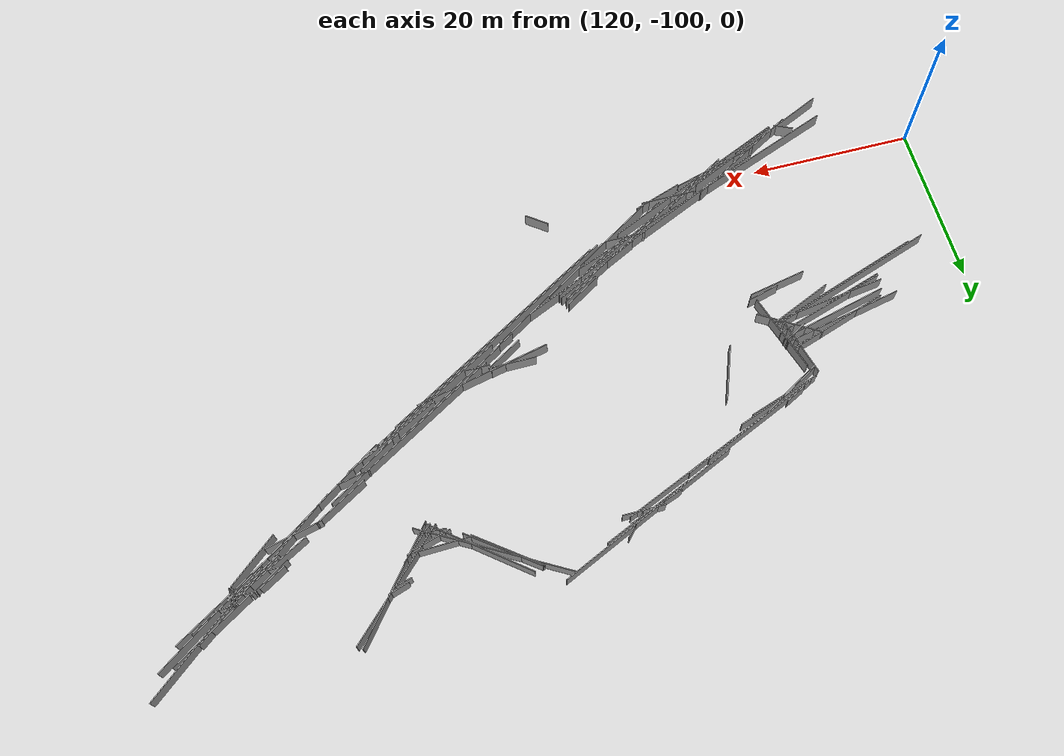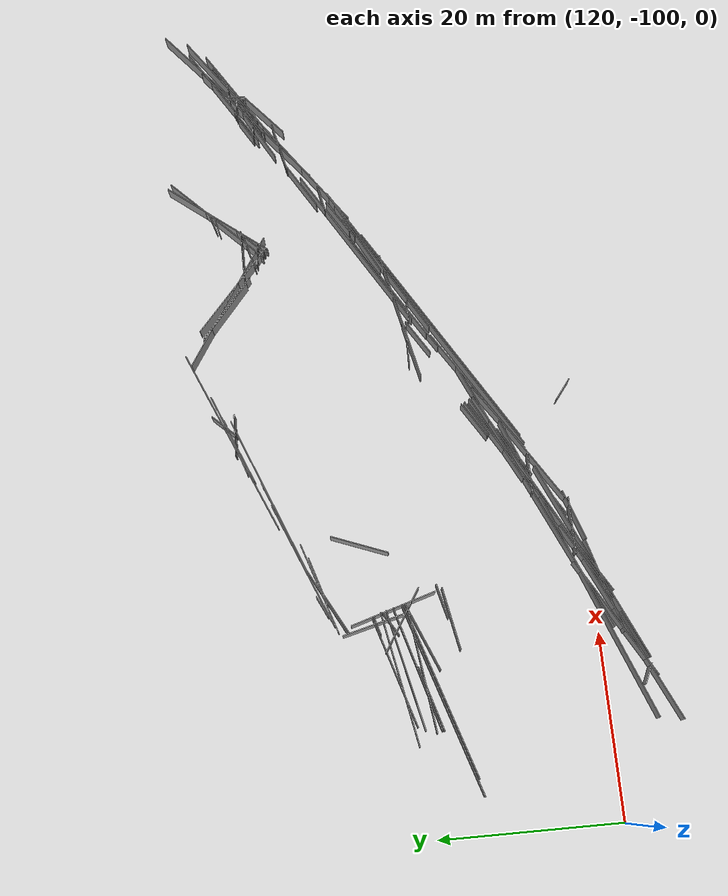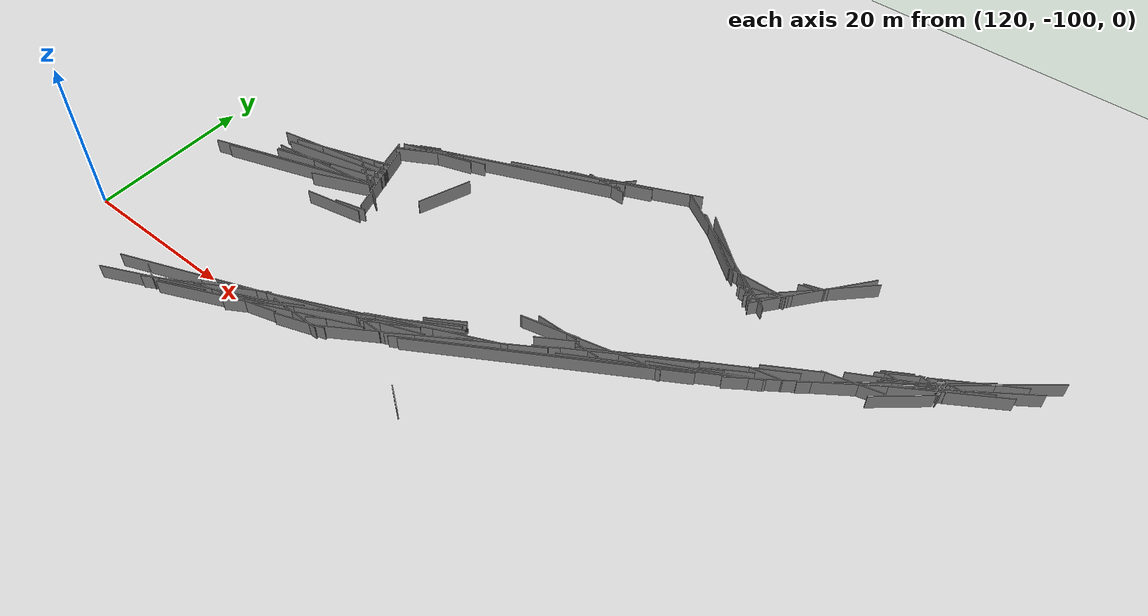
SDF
<sdf version="1.6">
 <world name="slam_world">
  <model name="ground_plane">
   <static>true</static>
   <link name="link">
    <collision name="collision">
     <geometry><plane><normal>0 0 1</normal><size>100 100</size></plane></geometry>
    </collision>
    <visual name="visual">
     <geometry><plane><normal>0 0 1</normal><size>100 100</size></plane></geometry>
     <material>
      <ambient>0.8 0.8 0.8 1</ambient>
      <diffuse>0.8 0.8 0.8 1</diffuse>
      <specular>0.8 0.8 0.8 1</specular>
     </material>
    </visual>
   </link>
  </model>
  <model name="wall_23">
   <static>true</static>
   <pose>179.3 -83.89999999999999 1.0 0 0 0.5395640684860857</pose>
   <link name="link">
    <collision name="collision">
     <geometry><box><size>40.096383876853515 0.1 2.0</size></box></geometry>
    </collision>
    <visual name="visual">
     <geometry><box><size>40.096383876853515 0.1 2.0</size></box></geometry>
     <material><ambient>0.5 0.5 0.5 1</ambient><diffuse>0.7 0.7 0.7 1</diffuse></material>
    </visual>
   </link>
  </model>
  <model name="wall_40">
   <static>true</static>
   <pose>135.2 -81.8 1.0 0 0 0.3249051180651195</pose>
   <link name="link">
    <collision name="collision">
     <geometry><box><size>20.048940121612404 0.1 2.0</size></box></geometry>
    </collision>
    <visual name="visual">
     <geometry><box><size>20.048940121612404 0.1 2.0</size></box></geometry>
     <material><ambient>0.5 0.5 0.5 1</ambient><diffuse>0.7 0.7 0.7 1</diffuse></material>
    </visual>
   </link>
  </model>
  <model name="wall_46">
   <static>true</static>
   <pose>188.9 -76.5 1.0 0 0 0.5389764998291451</pose>
   <link name="link">
    <collision name="collision"><geometry><box><size>23.76972864800945 0.1 2.0</size></box></geometry></collision>
    <visual name="visual">
     <geometry><box><size>23.76972864800945 0.1 2.0</size></box></geometry>
     <material><ambient>0.5 0.5 0.5 1</ambient><diffuse>0.7 0.7 0.7 1</diffuse></material>
    </visual>
   </link>
  </model>
  <model name="wall_67">
   <static>true</static>
   <pose>156.60000000000002 -94.3 1.0 0 0 0.4210668460849095</pose>
   <link name="link">
    <collision name="collision">
     <geometry><box><size>35.720022396409576 0.1 2.0</size></box></geometry>
    </collision>
    <visual name="visual">
     <geometry><box><size>35.720022396409576 0.1 2.0</size></box></geometry>
     <material><ambient>0.5 0.5 0.5 1</ambient><diffuse>0.7 0.7 0.7 1</diffuse></material>
    </visual>
   </link>
  </model>
  <model name="wall_80">
   <static>true</static>
   <pose>183.4 -80.1 1.0 0 0 0.549152902679009</pose>
   <link name="link">
    <collision name="collision">
     <geometry><box><size>15.709869509324408 0.1 2.0</size></box></geometry>
    </collision>
    <visual name="visual">
     <geometry><box><size>15.709869509324408 0.1 2.0</size></box></geometry>
     <material><ambient>0.5 0.5 0.5 1</ambient><diffuse>0.7 0.7 0.7 1</diffuse></material>
    </visual>
   </link>
  </model>
  <model name="wall_85">
   <static>true</static>
   <pose>145.0 -101.1 1.0 0 0 0.27580589858852195</pose>
   <link name="link">
    <collision name="collision"><geometry><box><size>11.01635148313635 0.1 2.0</size></box></geometry></collision>
    <visual name="visual">
     <geometry><box><size>11.01635148313635 0.1 2.0</size></box></geometry>
     <material><ambient>0.5 0.5 0.5 1</ambient><diffuse>0.7 0.7 0.7 1</diffuse></material>
    </visual>
   </link>
  </model>
  <model name="wall_93">
   <static>true</static>
   <pose>136.8 -77.5 1.0 0 0 0.20265866914747582</pose>
   <link name="link">
    <collision name="collision"><geometry><box><size>14.90503270710939 0.1 2.0</size></box></geometry></collision>
    <visual name="visual">
     <geometry><box><size>14.90503270710939 0.1 2.0</size></box></geometry>
     <material><ambient>0.5 0.5 0.5 1</ambient><diffuse>0.7 0.7 0.7 1</diffuse></material>
    </visual>
   </link>
  </model>
  <model name="wall_95">
   <static>true</static>
   <pose>158.5 -64.29999999999998 1.0 0 0 0.400949625366094</pose>
   <link name="link">
    <collision name="collision"><geometry><box><size>19.98499437077727 0.1 2.0</size></box></geometry></collision>
    <visual name="visual">
     <geometry><box><size>19.98499437077727 0.1 2.0</size></box></geometry>
     <material><ambient>0.5 0.5 0.5 1</ambient><diffuse>0.7 0.7 0.7 1</diffuse></material>
    </visual>
   </link>
  </model>
  <model name="wall_144">
   <static>true</static>
   <pose>193.9 -59.199999999999996 1.0 0 0 0.32175055439663686</pose>
   <link name="link">
    <collision name="collision"><geometry><box><size>2.529822128134735 0.1 2.0</size></box></geometry></collision>
    <visual name="visual">
     <geometry><box><size>2.529822128134735 0.1 2.0</size></box></geometry>
     <material><ambient>0.5 0.5 0.5 1</ambient><diffuse>0.7 0.7 0.7 1</diffuse></material>
    </visual>
   </link>
  </model>
  <model name="wall_149">
   <static>true</static>
   <pose>206.50000000000003 -66.4 1.0 0 0 0.6146629519221658</pose>
   <link name="link">
    <collision name="collision"><geometry><box><size>33.29384327469569 0.1 2.0</size></box></geometry></collision>
    <visual name="visual">
     <geometry><box><size>33.29384327469569 0.1 2.0</size></box></geometry>
     <material><ambient>0.5 0.5 0.5 1</ambient><diffuse>0.7 0.7 0.7 1</diffuse></material>
    </visual>
   </link>
  </model>
  <model name="wall_155">
   <static>true</static>
   <pose>158.10000000000002 -64.4 1.0 0 0 0.4182243295792287</pose>
   <link name="link">
    <collision name="collision">
     <geometry><box><size>3.9395431207184664 0.1 2.0</size></box></geometry>
    </collision>
    <visual name="visual">
     <geometry><box><size>3.9395431207184664 0.1 2.0</size></box></geometry>
     <material><ambient>0.5 0.5 0.5 1</ambient><diffuse>0.7 0.7 0.7 1</diffuse></material>
    </visual>
   </link>
  </model>
  <model name="wall_167">
   <static>true</static>
   <pose>139.3 -103.6 1.0 0 0 0.43240777557053317</pose>
   <link name="link">
    <collision name="collision"><geometry><box><size>5.727128425310579 0.1 2.0</size></box></geometry></collision>
    <visual name="visual">
     <geometry><box><size>5.727128425310579 0.1 2.0</size></box></geometry>
     <material><ambient>0.5 0.5 0.5 1</ambient><diffuse>0.7 0.7 0.7 1</diffuse></material>
    </visual>
   </link>
  </model>
  <model name="wall_187">
   <static>true</static>
   <pose>164.60000000000002 -60.8 1.0 0 0 0.3487710035839066</pose>
   <link name="link">
    <collision name="collision"><geometry><box><size>7.022819946431798 0.1 2.0</size></box></geometry></collision>
    <visual name="visual">
     <geometry><box><size>7.022819946431798 0.1 2.0</size></box></geometry>
     <material><ambient>0.5 0.5 0.5 1</ambient><diffuse>0.7 0.7 0.7 1</diffuse></material>
    </visual>
   </link>
  </model>
  <model name="wall_211">
   <static>true</static>
   <pose>176.4 -83.1 1.0 0 0 0.554307496201554</pose>
   <link name="link">
    <collision name="collision"><geometry><box><size>4.939635614091382 0.1 2.0</size></box></geometry></collision>
    <visual name="visual">
     <geometry><box><size>4.939635614091382 0.1 2.0</size></box></geometry>
     <material><ambient>0.5 0.5 0.5 1</ambient><diffuse>0.7 0.7 0.7 1</diffuse></material>
    </visual>
   </link>
  </model>
  <model name="wall_212">
   <static>true</static>
   <pose>176.8 -85.6 1.0 0 0 0.539345386827591</pose>
   <link name="link">
    <collision name="collision"><geometry><box><size>31.93305497443047 0.1 2.0</size></box></geometry></collision>
    <visual name="visual">
     <geometry><box><size>31.93305497443047 0.1 2.0</size></box></geometry>
     <material><ambient>0.5 0.5 0.5 1</ambient><diffuse>0.7 0.7 0.7 1</diffuse></material>
    </visual>
   </link>
  </model>
  <model name="wall_226">
   <static>true</static>
   <pose>212.0 -61.9 1.0 0 0 0.06656816377582475</pose>
   <link name="link">
    <collision name="collision"><geometry><box><size>3.006659275674582 0.1 2.0</size></box></geometry></collision>
    <visual name="visual">
     <geometry><box><size>3.006659275674582 0.1 2.0</size></box></geometry>
     <material><ambient>0.5 0.5 0.5 1</ambient><diffuse>0.7 0.7 0.7 1</diffuse></material>
    </visual>
   </link>
  </model>
  <model name="wall_237">
   <static>true</static>
   <pose>165.5 -60.3 1.0 0 0 0.42592965653394194</pose>
   <link name="link">
    <collision name="collision"><geometry><box><size>23.71919054268086 0.1 2.0</size></box></geometry></collision>
    <visual name="visual">
     <geometry><box><size>23.71919054268086 0.1 2.0</size></box></geometry>
     <material><ambient>0.5 0.5 0.5 1</ambient><diffuse>0.7 0.7 0.7 1</diffuse></material>
    </visual>
   </link>
  </model>
  <model name="wall_242">
   <static>true</static>
   <pose>194.0 -59.7 1.0 0 0 0.7853981633974483</pose>
   <link name="link">
    <collision name="collision">
     <geometry><box><size>15.556349186104045 0.1 2.0</size></box></geometry>
    </collision>
    <visual name="visual">
     <geometry><box><size>15.556349186104045 0.1 2.0</size></box></geometry>
     <material><ambient>0.5 0.5 0.5 1</ambient><diffuse>0.7 0.7 0.7 1</diffuse></material>
    </visual>
   </link>
  </model>
  <model name="wall_251">
   <static>true</static>
   <pose>165.60000000000002 -60.5 1.0 0 0 0.40943720952614143</pose>
   <link name="link">
    <collision name="collision"><geometry><box><size>11.55508546052345 0.1 2.0</size></box></geometry></collision>
    <visual name="visual">
     <geometry><box><size>11.55508546052345 0.1 2.0</size></box></geometry>
     <material><ambient>0.5 0.5 0.5 1</ambient><diffuse>0.7 0.7 0.7 1</diffuse></material>
    </visual>
   </link>
  </model>
  <model name="wall_259">
   <static>true</static>
   <pose>198.10000000000002 -70.39999999999999 1.0 0 0 0.5404195002705835</pose>
   <link name="link">
    <collision name="collision"><geometry><box><size>6.997142273814357 0.1 2.0</size></box></geometry></collision>
    <visual name="visual">
     <geometry><box><size>6.997142273814357 0.1 2.0</size></box></geometry>
     <material><ambient>0.5 0.5 0.5 1</ambient><diffuse>0.7 0.7 0.7 1</diffuse></material>
    </visual>
   </link>
  </model>
  <model name="wall_264">
   <static>true</static>
   <pose>137.70000000000002 -78.19999999999999 1.0 0 0 0.23783592745745116</pose>
   <link name="link">
    <collision name="collision">
     <geometry><box><size>13.582341477079705 0.1 2.0</size></box></geometry>
    </collision>
    <visual name="visual">
     <geometry><box><size>13.582341477079705 0.1 2.0</size></box></geometry>
     <material><ambient>0.5 0.5 0.5 1</ambient><diffuse>0.7 0.7 0.7 1</diffuse></material>
    </visual>
   </link>
  </model>
  <model name="wall_281">
   <static>true</static>
   <pose>134.40000000000003 -80.69999999999999 1.0 0 0 0.3045108832021129</pose>
   <link name="link">
    <collision name="collision">
     <geometry><box><size>7.3375745311376575 0.1 2.0</size></box></geometry>
    </collision>
    <visual name="visual">
     <geometry><box><size>7.3375745311376575 0.1 2.0</size></box></geometry>
     <material><ambient>0.5 0.5 0.5 1</ambient><diffuse>0.7 0.7 0.7 1</diffuse></material>
    </visual>
   </link>
  </model>
  <model name="wall_291">
   <static>true</static>
   <pose>147.4 -69.39999999999999 1.0 0 0 0.3392926144540445</pose>
   <link name="link">
    <collision name="collision">
     <geometry><box><size>10.816653826391954 0.1 2.0</size></box></geometry>
    </collision>
    <visual name="visual">
     <geometry><box><size>10.816653826391954 0.1 2.0</size></box></geometry>
     <material><ambient>0.5 0.5 0.5 1</ambient><diffuse>0.7 0.7 0.7 1</diffuse></material>
    </visual>
   </link>
  </model>
  <model name="wall_293">
   <static>true</static>
   <pose>211.10000000000002 -62.8 1.0 0 0 -1.5707963267948966</pose>
   <link name="link">
    <collision name="collision"><geometry><box><size>2.0 0.1 2.0</size></box></geometry></collision>
    <visual name="visual">
     <geometry><box><size>2.0 0.1 2.0</size></box></geometry>
     <material><ambient>0.5 0.5 0.5 1</ambient><diffuse>0.7 0.7 0.7 1</diffuse></material>
    </visual>
   </link>
  </model>
  <model name="wall_328">
   <static>true</static>
   <pose>165.9 -91.3 1.0 0 0 0.5636711230810475</pose>
   <link name="link">
    <collision name="collision"><geometry><box><size>25.0798724079689 0.1 2.0</size></box></geometry></collision>
    <visual name="visual">
     <geometry><box><size>25.0798724079689 0.1 2.0</size></box></geometry>
     <material><ambient>0.5 0.5 0.5 1</ambient><diffuse>0.7 0.7 0.7 1</diffuse></material>
    </visual>
   </link>
  </model>
  <model name="wall_351">
   <static>true</static>
   <pose>137.6 -80.0 1.0 0 0 0.1439254493882162</pose>
   <link name="link">
    <collision name="collision">
     <geometry><box><size>13.944174410842699 0.1 2.0</size></box></geometry>
    </collision>
    <visual name="visual">
     <geometry><box><size>13.944174410842699 0.1 2.0</size></box></geometry>
     <material><ambient>0.5 0.5 0.5 1</ambient><diffuse>0.7 0.7 0.7 1</diffuse></material>
    </visual>
   </link>
  </model>
  <model name="wall_355">
   <static>true</static>
   <pose>141.3 -101.8 1.0 0 0 0.522403431716527</pose>
   <link name="link">
    <collision name="collision">
     <geometry><box><size>15.231546211727853 0.1 2.0</size></box></geometry>
    </collision>
    <visual name="visual">
     <geometry><box><size>15.231546211727853 0.1 2.0</size></box></geometry>
     <material><ambient>0.5 0.5 0.5 1</ambient><diffuse>0.7 0.7 0.7 1</diffuse></material>
    </visual>
   </link>
  </model>
  <model name="wall_358">
   <static>true</static>
   <pose>188.60000000000002 -62.699999999999996 1.0 0 0 0.027020449187265254</pose>
   <link name="link">
    <collision name="collision"><geometry><box><size>7.402702209328676 0.1 2.0</size></box></geometry></collision>
    <visual name="visual">
     <geometry><box><size>7.402702209328676 0.1 2.0</size></box></geometry>
     <material><ambient>0.5 0.5 0.5 1</ambient><diffuse>0.7 0.7 0.7 1</diffuse></material>
    </visual>
   </link>
  </model>
  <model name="wall_369">
   <static>true</static>
   <pose>176.20000000000002 -84.6 1.0 0 0 0.5516549825285552</pose>
   <link name="link">
    <collision name="collision"><geometry><box><size>3.052867504494725 0.1 2.0</size></box></geometry></collision>
    <visual name="visual">
     <geometry><box><size>3.052867504494725 0.1 2.0</size></box></geometry>
     <material><ambient>0.5 0.5 0.5 1</ambient><diffuse>0.7 0.7 0.7 1</diffuse></material>
    </visual>
   </link>
  </model>
  <model name="wall_371">
   <static>true</static>
   <pose>210.90000000000003 -63.099999999999994 1.0 0 0 0.5375866466587467</pose>
   <link name="link">
    <collision name="collision">
     <geometry><box><size>12.107848694132224 0.1 2.0</size></box></geometry>
    </collision>
    <visual name="visual">
     <geometry><box><size>12.107848694132224 0.1 2.0</size></box></geometry>
     <material><ambient>0.5 0.5 0.5 1</ambient><diffuse>0.7 0.7 0.7 1</diffuse></material>
    </visual>
   </link>
  </model>
  <model name="wall_378">
   <static>true</static>
   <pose>148.0 -100.0 1.0 0 0 0.4165809456847949</pose>
   <link name="link">
    <collision name="collision"><geometry><box><size>24.71355903143052 0.1 2.0</size></box></geometry></collision>
    <visual name="visual">
     <geometry><box><size>24.71355903143052 0.1 2.0</size></box></geometry>
     <material><ambient>0.5 0.5 0.5 1</ambient><diffuse>0.7 0.7 0.7 1</diffuse></material>
    </visual>
   </link>
  </model>
  <model name="wall_388">
   <static>true</static>
   <pose>206.60000000000002 -65.1 1.0 0 0 0.5112307122777879</pose>
   <link name="link">
    <collision name="collision"><geometry><box><size>9.40212741883457 0.1 2.0</size></box></geometry></collision>
    <visual name="visual">
     <geometry><box><size>9.40212741883457 0.1 2.0</size></box></geometry>
     <material><ambient>0.5 0.5 0.5 1</ambient><diffuse>0.7 0.7 0.7 1</diffuse></material>
    </visual>
   </link>
  </model>
  <model name="wall_393">
   <static>true</static>
   <pose>189.50000000000003 -63.5 1.0 0 0 0.2837941092083283</pose>
   <link name="link">
    <collision name="collision"><geometry><box><size>5.000000000000012 0.1 2.0</size></box></geometry></collision>
    <visual name="visual">
     <geometry><box><size>5.000000000000012 0.1 2.0</size></box></geometry>
     <material><ambient>0.5 0.5 0.5 1</ambient><diffuse>0.7 0.7 0.7 1</diffuse></material>
    </visual>
   </link>
  </model>
  <model name="wall_396">
   <static>true</static>
   <pose>166.0 -60.8 1.0 0 0 0.0</pose>
   <link name="link">
    <collision name="collision"><geometry><box><size>5.0 0.1 2.0</size></box></geometry></collision>
    <visual name="visual">
     <geometry><box><size>5.0 0.1 2.0</size></box></geometry>
     <material><ambient>0.5 0.5 0.5 1</ambient><diffuse>0.7 0.7 0.7 1</diffuse></material>
    </visual>
   </link>
  </model>
  <model name="wall_425">
   <static>true</static>
   <pose>145.9 -70.1 1.0 0 0 0.504861371659127</pose>
   <link name="link">
    <collision name="collision"><geometry><box><size>8.683317338436929 0.1 2.0</size></box></geometry></collision>
    <visual name="visual">
     <geometry><box><size>8.683317338436929 0.1 2.0</size></box></geometry>
     <material><ambient>0.5 0.5 0.5 1</ambient><diffuse>0.7 0.7 0.7 1</diffuse></material>
    </visual>
   </link>
  </model>
  <model name="wall_426">
   <static>true</static>
   <pose>139.00000000000003 -103.4 1.0 0 0 0.43240777557053767</pose>
   <link name="link">
    <collision name="collision"><geometry><box><size>20.04494948858688 0.1 2.0</size></box></geometry></collision>
    <visual name="visual">
     <geometry><box><size>20.04494948858688 0.1 2.0</size></box></geometry>
     <material><ambient>0.5 0.5 0.5 1</ambient><diffuse>0.7 0.7 0.7 1</diffuse></material>
    </visual>
   </link>
  </model>
  <model name="wall_428">
   <static>true</static>
   <pose>193.4 -59.699999999999996 1.0 0 0 0.26625204915093026</pose>
   <link name="link">
    <collision name="collision"><geometry><box><size>2.280350850198267 0.1 2.0</size></box></geometry></collision>
    <visual name="visual">
     <geometry><box><size>2.280350850198267 0.1 2.0</size></box></geometry>
     <material><ambient>0.5 0.5 0.5 1</ambient><diffuse>0.7 0.7 0.7 1</diffuse></material>
    </visual>
   </link>
  </model>
  <model name="wall_435">
   <static>true</static>
   <pose>190.9 -63.599999999999994 1.0 0 0 0.7853981633974523</pose>
   <link name="link">
    <collision name="collision">
     <geometry><box><size>5.0911688245431135 0.1 2.0</size></box></geometry>
    </collision>
    <visual name="visual">
     <geometry><box><size>5.0911688245431135 0.1 2.0</size></box></geometry>
     <material><ambient>0.5 0.5 0.5 1</ambient><diffuse>0.7 0.7 0.7 1</diffuse></material>
    </visual>
   </link>
  </model>
  <model name="wall_437">
   <static>true</static>
   <pose>206.8 -63.9 1.0 0 0 0.5404195002705835</pose>
   <link name="link">
    <collision name="collision">
     <geometry><box><size>3.4985711369071786 0.1 2.0</size></box></geometry>
    </collision>
    <visual name="visual">
     <geometry><box><size>3.4985711369071786 0.1 2.0</size></box></geometry>
     <material><ambient>0.5 0.5 0.5 1</ambient><diffuse>0.7 0.7 0.7 1</diffuse></material>
    </visual>
   </link>
  </model>
  <model name="wall_447">
   <static>true</static>
   <pose>210.30000000000004 -62.9 1.0 0 0 -0.06241880999595845</pose>
   <link name="link">
    <collision name="collision"><geometry><box><size>3.206243908376268 0.1 2.0</size></box></geometry></collision>
    <visual name="visual">
     <geometry><box><size>3.206243908376268 0.1 2.0</size></box></geometry>
     <material><ambient>0.5 0.5 0.5 1</ambient><diffuse>0.7 0.7 0.7 1</diffuse></material>
    </visual>
   </link>
  </model>
  <model name="wall_467">
   <static>true</static>
   <pose>157.20000000000002 -94.69999999999999 1.0 0 0 0.4885534900210454</pose>
   <link name="link">
    <collision name="collision"><geometry><box><size>25.14120124417287 0.1 2.0</size></box></geometry></collision>
    <visual name="visual">
     <geometry><box><size>25.14120124417287 0.1 2.0</size></box></geometry>
     <material><ambient>0.5 0.5 0.5 1</ambient><diffuse>0.7 0.7 0.7 1</diffuse></material>
    </visual>
   </link>
  </model>
  <model name="wall_470">
   <static>true</static>
   <pose>183.00000000000003 -60.699999999999996 1.0 0 0 -0.5257685339891907</pose>
   <link name="link">
    <collision name="collision">
     <geometry><box><size>18.729655629509036 0.1 2.0</size></box></geometry>
    </collision>
    <visual name="visual">
     <geometry><box><size>18.729655629509036 0.1 2.0</size></box></geometry>
     <material><ambient>0.5 0.5 0.5 1</ambient><diffuse>0.7 0.7 0.7 1</diffuse></material>
    </visual>
   </link>
  </model>
  <model name="wall_491">
   <static>true</static>
   <pose>210.90000000000003 -63.6 1.0 0 0 0.561163412288352</pose>
   <link name="link">
    <collision name="collision"><geometry><box><size>16.53602128687551 0.1 2.0</size></box></geometry></collision>
    <visual name="visual">
     <geometry><box><size>16.53602128687551 0.1 2.0</size></box></geometry>
     <material><ambient>0.5 0.5 0.5 1</ambient><diffuse>0.7 0.7 0.7 1</diffuse></material>
    </visual>
   </link>
  </model>
  <model name="wall_509">
   <static>true</static>
   <pose>158.60000000000002 -94.4 1.0 0 0 0.0</pose>
   <link name="link">
    <collision name="collision"><geometry><box><size>5.0 0.1 2.0</size></box></geometry></collision>
    <visual name="visual">
     <geometry><box><size>5.0 0.1 2.0</size></box></geometry>
     <material><ambient>0.5 0.5 0.5 1</ambient><diffuse>0.7 0.7 0.7 1</diffuse></material>
    </visual>
   </link>
  </model>
  <model name="wall_523">
   <static>true</static>
   <pose>137.70000000000002 -79.5 1.0 0 0 0.29953198906992307</pose>
   <link name="link">
    <collision name="collision">
     <geometry><box><size>14.233762678926432 0.1 2.0</size></box></geometry>
    </collision>
    <visual name="visual">
     <geometry><box><size>14.233762678926432 0.1 2.0</size></box></geometry>
     <material><ambient>0.5 0.5 0.5 1</ambient><diffuse>0.7 0.7 0.7 1</diffuse></material>
    </visual>
   </link>
  </model>
  <model name="wall_524">
   <static>true</static>
   <pose>141.0 -80.4 1.0 0 0 0.4081491037550907</pose>
   <link name="link">
    <collision name="collision"><geometry><box><size>8.06225774829853 0.1 2.0</size></box></geometry></collision>
    <visual name="visual">
     <geometry><box><size>8.06225774829853 0.1 2.0</size></box></geometry>
     <material><ambient>0.5 0.5 0.5 1</ambient><diffuse>0.7 0.7 0.7 1</diffuse></material>
    </visual>
   </link>
  </model>
  <model name="wall_530">
   <static>true</static>
   <pose>187.1 -79.0 1.0 0 0 0.5280744484263595</pose>
   <link name="link">
    <collision name="collision">
     <geometry><box><size>22.227910383119674 0.1 2.0</size></box></geometry>
    </collision>
    <visual name="visual">
     <geometry><box><size>22.227910383119674 0.1 2.0</size></box></geometry>
     <material><ambient>0.5 0.5 0.5 1</ambient><diffuse>0.7 0.7 0.7 1</diffuse></material>
    </visual>
   </link>
  </model>
  <model name="wall_536">
   <static>true</static>
   <pose>154.3 -97.4 1.0 0 0 0.5404195002705852</pose>
   <link name="link">
    <collision name="collision">
     <geometry><box><size>2.3323807579381217 0.1 2.0</size></box></geometry>
    </collision>
    <visual name="visual">
     <geometry><box><size>2.3323807579381217 0.1 2.0</size></box></geometry>
     <material><ambient>0.5 0.5 0.5 1</ambient><diffuse>0.7 0.7 0.7 1</diffuse></material>
    </visual>
   </link>
  </model>
  <model name="wall_544">
   <static>true</static>
   <pose>137.6 -77.0 1.0 0 0 0.3168244858682195</pose>
   <link name="link">
    <collision name="collision">
     <geometry><box><size>12.839003076563216 0.1 2.0</size></box></geometry>
    </collision>
    <visual name="visual">
     <geometry><box><size>12.839003076563216 0.1 2.0</size></box></geometry>
     <material><ambient>0.5 0.5 0.5 1</ambient><diffuse>0.7 0.7 0.7 1</diffuse></material>
    </visual>
   </link>
  </model>
  <model name="wall_549">
   <static>true</static>
   <pose>152.0 -98.4 1.0 0 0 0.0</pose>
   <link name="link">
    <collision name="collision"><geometry><box><size>6.600000000000023 0.1 2.0</size></box></geometry></collision>
    <visual name="visual">
     <geometry><box><size>6.600000000000023 0.1 2.0</size></box></geometry>
     <material><ambient>0.5 0.5 0.5 1</ambient><diffuse>0.7 0.7 0.7 1</diffuse></material>
    </visual>
   </link>
  </model>
  <model name="wall_580">
   <static>true</static>
   <pose>214.0 -59.8 1.0 0 0 0.5565993180102222</pose>
   <link name="link">
    <collision name="collision">
     <geometry><box><size>10.599999999999996 0.1 2.0</size></box></geometry>
    </collision>
    <visual name="visual">
     <geometry><box><size>10.599999999999996 0.1 2.0</size></box></geometry>
     <material><ambient>0.5 0.5 0.5 1</ambient><diffuse>0.7 0.7 0.7 1</diffuse></material>
    </visual>
   </link>
  </model>
  <model name="wall_593">
   <static>true</static>
   <pose>161.20000000000002 -92.89999999999999 1.0 0 0 0.5302157727766298</pose>
   <link name="link">
    <collision name="collision"><geometry><box><size>6.723094525588657 0.1 2.0</size></box></geometry></collision>
    <visual name="visual">
     <geometry><box><size>6.723094525588657 0.1 2.0</size></box></geometry>
     <material><ambient>0.5 0.5 0.5 1</ambient><diffuse>0.7 0.7 0.7 1</diffuse></material>
    </visual>
   </link>
  </model>
  <model name="wall_616">
   <static>true</static>
   <pose>189.0 -64.5 1.0 0 0 -0.06656816377582475</pose>
   <link name="link">
    <collision name="collision"><geometry><box><size>3.006659275674582 0.1 2.0</size></box></geometry></collision>
    <visual name="visual">
     <geometry><box><size>3.006659275674582 0.1 2.0</size></box></geometry>
     <material><ambient>0.5 0.5 0.5 1</ambient><diffuse>0.7 0.7 0.7 1</diffuse></material>
    </visual>
   </link>
  </model>
  <model name="wall_638">
   <static>true</static>
   <pose>179.5 -81.2 1.0 0 0 0.22131444234779096</pose>
   <link name="link">
    <collision name="collision"><geometry><box><size>16.4 0.1 2.0</size></box></geometry></collision>
    <visual name="visual">
     <geometry><box><size>16.4 0.1 2.0</size></box></geometry>
     <material><ambient>0.5 0.5 0.5 1</ambient><diffuse>0.7 0.7 0.7 1</diffuse></material>
    </visual>
   </link>
  </model>
  <model name="wall_645">
   <static>true</static>
   <pose>163.00000000000003 -91.0 1.0 0 0 0.4714599500609068</pose>
   <link name="link">
    <collision name="collision">
     <geometry><box><size>11.449017425089353 0.1 2.0</size></box></geometry>
    </collision>
    <visual name="visual">
     <geometry><box><size>11.449017425089353 0.1 2.0</size></box></geometry>
     <material><ambient>0.5 0.5 0.5 1</ambient><diffuse>0.7 0.7 0.7 1</diffuse></material>
    </visual>
   </link>
  </model>
  <model name="wall_664">
   <static>true</static>
   <pose>142.7 -75.5 1.0 0 0 0.291456794477871</pose>
   <link name="link">
    <collision name="collision">
     <geometry><box><size>2.0880613017821124 0.1 2.0</size></box></geometry>
    </collision>
    <visual name="visual">
     <geometry><box><size>2.0880613017821124 0.1 2.0</size></box></geometry>
     <material><ambient>0.5 0.5 0.5 1</ambient><diffuse>0.7 0.7 0.7 1</diffuse></material>
    </visual>
   </link>
  </model>
  <model name="wall_676">
   <static>true</static>
   <pose>151.9 -74.2 1.0 0 0 1.21202565652432</pose>
   <link name="link">
    <collision name="collision"><geometry><box><size>6.835202996254042 0.1 2.0</size></box></geometry></collision>
    <visual name="visual">
     <geometry><box><size>6.835202996254042 0.1 2.0</size></box></geometry>
     <material><ambient>0.5 0.5 0.5 1</ambient><diffuse>0.7 0.7 0.7 1</diffuse></material>
    </visual>
   </link>
  </model>
  <model name="wall_683">
   <static>true</static>
   <pose>142.8 -77.0 1.0 0 0 0.5516549825285454</pose>
   <link name="link">
    <collision name="collision">
     <geometry><box><size>3.0528675044947735 0.1 2.0</size></box></geometry>
    </collision>
    <visual name="visual">
     <geometry><box><size>3.0528675044947735 0.1 2.0</size></box></geometry>
     <material><ambient>0.5 0.5 0.5 1</ambient><diffuse>0.7 0.7 0.7 1</diffuse></material>
    </visual>
   </link>
  </model>
  <model name="wall_693">
   <static>true</static>
   <pose>142.8 -83.7 1.0 0 0 0.19739555984988155</pose>
   <link name="link">
    <collision name="collision"><geometry><box><size>7.1386273190299 0.1 2.0</size></box></geometry></collision>
    <visual name="visual">
     <geometry><box><size>7.1386273190299 0.1 2.0</size></box></geometry>
     <material><ambient>0.5 0.5 0.5 1</ambient><diffuse>0.7 0.7 0.7 1</diffuse></material>
    </visual>
   </link>
  </model>
  <model name="wall_697">
   <static>true</static>
   <pose>155.9 -95.1 1.0 0 0 0.5366075746426191</pose>
   <link name="link">
    <collision name="collision"><geometry><box><size>26.99407342362393 0.1 2.0</size></box></geometry></collision>
    <visual name="visual">
     <geometry><box><size>26.99407342362393 0.1 2.0</size></box></geometry>
     <material><ambient>0.5 0.5 0.5 1</ambient><diffuse>0.7 0.7 0.7 1</diffuse></material>
    </visual>
   </link>
  </model>
  <model name="wall_730">
   <static>true</static>
   <pose>150.20000000000002 -67.69999999999999 1.0 0 0 0.4116713434318953</pose>
   <link name="link">
    <collision name="collision">
     <geometry><box><size>15.494515158597242 0.1 2.0</size></box></geometry>
    </collision>
    <visual name="visual">
     <geometry><box><size>15.494515158597242 0.1 2.0</size></box></geometry>
     <material><ambient>0.5 0.5 0.5 1</ambient><diffuse>0.7 0.7 0.7 1</diffuse></material>
    </visual>
   </link>
  </model>
  <model name="wall_742">
   <static>true</static>
   <pose>168.3 -99.5 1.0 0 0 -0.643501108793292</pose>
   <link name="link">
    <collision name="collision"><geometry><box><size>2.999999999999989 0.1 2.0</size></box></geometry></collision>
    <visual name="visual">
     <geometry><box><size>2.999999999999989 0.1 2.0</size></box></geometry>
     <material><ambient>0.5 0.5 0.5 1</ambient><diffuse>0.7 0.7 0.7 1</diffuse></material>
    </visual>
   </link>
  </model>
  <model name="wall_743">
   <static>true</static>
   <pose>207.10000000000002 -63.99999999999999 1.0 0 0 0.5667292175235082</pose>
   <link name="link">
    <collision name="collision">
     <geometry><box><size>5.2153619241620985 0.1 2.0</size></box></geometry>
    </collision>
    <visual name="visual">
     <geometry><box><size>5.2153619241620985 0.1 2.0</size></box></geometry>
     <material><ambient>0.5 0.5 0.5 1</ambient><diffuse>0.7 0.7 0.7 1</diffuse></material>
    </visual>
   </link>
  </model>
  <model name="wall_748">
   <static>true</static>
   <pose>191.5 -75.89999999999999 1.0 0 0 0.5280744484263655</pose>
   <link name="link">
    <collision name="collision"><geometry><box><size>2.778488797889944 0.1 2.0</size></box></geometry></collision>
    <visual name="visual">
     <geometry><box><size>2.778488797889944 0.1 2.0</size></box></geometry>
     <material><ambient>0.5 0.5 0.5 1</ambient><diffuse>0.7 0.7 0.7 1</diffuse></material>
    </visual>
   </link>
  </model>
  <model name="wall_755">
   <static>true</static>
   <pose>184.5 -61.4 1.0 0 0 -0.679413805407849</pose>
   <link name="link">
    <collision name="collision"><geometry><box><size>13.3686199736547 0.1 2.0</size></box></geometry></collision>
    <visual name="visual">
     <geometry><box><size>13.3686199736547 0.1 2.0</size></box></geometry>
     <material><ambient>0.5 0.5 0.5 1</ambient><diffuse>0.7 0.7 0.7 1</diffuse></material>
    </visual>
   </link>
  </model>
  <model name="wall_785">
   <static>true</static>
   <pose>214.50000000000003 -59.699999999999996 1.0 0 0 0.6976242710702288</pose>
   <link name="link">
    <collision name="collision">
     <geometry><box><size>17.745985461506468 0.1 2.0</size></box></geometry>
    </collision>
    <visual name="visual">
     <geometry><box><size>17.745985461506468 0.1 2.0</size></box></geometry>
     <material><ambient>0.5 0.5 0.5 1</ambient><diffuse>0.7 0.7 0.7 1</diffuse></material>
    </visual>
   </link>
  </model>
  <model name="wall_791">
   <static>true</static>
   <pose>143.1 -78.3 1.0 0 0 -0.5532943253222937</pose>
   <link name="link">
    <collision name="collision"><geometry><box><size>7.992496481075253 0.1 2.0</size></box></geometry></collision>
    <visual name="visual">
     <geometry><box><size>7.992496481075253 0.1 2.0</size></box></geometry>
     <material><ambient>0.5 0.5 0.5 1</ambient><diffuse>0.7 0.7 0.7 1</diffuse></material>
    </visual>
   </link>
  </model>
  <model name="wall_798">
   <static>true</static>
   <pose>190.20000000000002 -76.9 1.0 0 0 0.4888523543277463</pose>
   <link name="link">
    <collision name="collision">
     <geometry><box><size>10.647065323364961 0.1 2.0</size></box></geometry>
    </collision>
    <visual name="visual">
     <geometry><box><size>10.647065323364961 0.1 2.0</size></box></geometry>
     <material><ambient>0.5 0.5 0.5 1</ambient><diffuse>0.7 0.7 0.7 1</diffuse></material>
    </visual>
   </link>
  </model>
  <model name="wall_808">
   <static>true</static>
   <pose>174.8 -82.2 1.0 0 0 0.22471116841464192</pose>
   <link name="link">
    <collision name="collision"><geometry><box><size>7.180529228406495 0.1 2.0</size></box></geometry></collision>
    <visual name="visual">
     <geometry><box><size>7.180529228406495 0.1 2.0</size></box></geometry>
     <material><ambient>0.5 0.5 0.5 1</ambient><diffuse>0.7 0.7 0.7 1</diffuse></material>
    </visual>
   </link>
  </model>
  <model name="wall_811">
   <static>true</static>
   <pose>145.3 -69.6 1.0 0 0 0.4636476090008061</pose>
   <link name="link">
    <collision name="collision">
     <geometry><box><size>2.6832815729997224 0.1 2.0</size></box></geometry>
    </collision>
    <visual name="visual">
     <geometry><box><size>2.6832815729997224 0.1 2.0</size></box></geometry>
     <material><ambient>0.5 0.5 0.5 1</ambient><diffuse>0.7 0.7 0.7 1</diffuse></material>
    </visual>
   </link>
  </model>
  <model name="wall_823">
   <static>true</static>
   <pose>193.20000000000002 -74.7 1.0 0 0 0.5543074962015515</pose>
   <link name="link">
    <collision name="collision"><geometry><box><size>4.939635614091375 0.1 2.0</size></box></geometry></collision>
    <visual name="visual">
     <geometry><box><size>4.939635614091375 0.1 2.0</size></box></geometry>
     <material><ambient>0.5 0.5 0.5 1</ambient><diffuse>0.7 0.7 0.7 1</diffuse></material>
    </visual>
   </link>
  </model>
  <model name="wall_825">
   <static>true</static>
   <pose>165.5 -91.5 1.0 0 0 0.5937496667107705</pose>
   <link name="link">
    <collision name="collision"><geometry><box><size>9.651942809610919 0.1 2.0</size></box></geometry></collision>
    <visual name="visual">
     <geometry><box><size>9.651942809610919 0.1 2.0</size></box></geometry>
     <material><ambient>0.5 0.5 0.5 1</ambient><diffuse>0.7 0.7 0.7 1</diffuse></material>
    </visual>
   </link>
  </model>
  <model name="wall_836">
   <static>true</static>
   <pose>167.20000000000002 -59.6 1.0 0 0 0.8224182792713843</pose>
   <link name="link">
    <collision name="collision"><geometry><box><size>3.820994634908535 0.1 2.0</size></box></geometry></collision>
    <visual name="visual">
     <geometry><box><size>3.820994634908535 0.1 2.0</size></box></geometry>
     <material><ambient>0.5 0.5 0.5 1</ambient><diffuse>0.7 0.7 0.7 1</diffuse></material>
    </visual>
   </link>
  </model>
  <model name="wall_860">
   <static>true</static>
   <pose>147.70000000000002 -98.3 1.0 0 0 0.36755889348343923</pose>
   <link name="link">
    <collision name="collision"><geometry><box><size>37.29074952317265 0.1 2.0</size></box></geometry></collision>
    <visual name="visual">
     <geometry><box><size>37.29074952317265 0.1 2.0</size></box></geometry>
     <material><ambient>0.5 0.5 0.5 1</ambient><diffuse>0.7 0.7 0.7 1</diffuse></material>
    </visual>
   </link>
  </model>
  <model name="wall_863">
   <static>true</static>
   <pose>196.20000000000002 -72.8 1.0 0 0 0.20749622643519777</pose>
   <link name="link">
    <collision name="collision"><geometry><box><size>3.883297567789527 0.1 2.0</size></box></geometry></collision>
    <visual name="visual">
     <geometry><box><size>3.883297567789527 0.1 2.0</size></box></geometry>
     <material><ambient>0.5 0.5 0.5 1</ambient><diffuse>0.7 0.7 0.7 1</diffuse></material>
    </visual>
   </link>
  </model>
  <model name="wall_890">
   <static>true</static>
   <pose>165.6 -89.0 1.0 0 0 0.5191461142465226</pose>
   <link name="link">
    <collision name="collision"><geometry><box><size>4.837354648979115 0.1 2.0</size></box></geometry></collision>
    <visual name="visual">
     <geometry><box><size>4.837354648979115 0.1 2.0</size></box></geometry>
     <material><ambient>0.5 0.5 0.5 1</ambient><diffuse>0.7 0.7 0.7 1</diffuse></material>
    </visual>
   </link>
  </model>
  <model name="wall_891">
   <static>true</static>
   <pose>144.8 -82.9 1.0 0 0 0.2573237149710916</pose>
   <link name="link">
    <collision name="collision"><geometry><box><size>3.929376540877656 0.1 2.0</size></box></geometry></collision>
    <visual name="visual">
     <geometry><box><size>3.929376540877656 0.1 2.0</size></box></geometry>
     <material><ambient>0.5 0.5 0.5 1</ambient><diffuse>0.7 0.7 0.7 1</diffuse></material>
    </visual>
   </link>
  </model>
  <model name="wall_914">
   <static>true</static>
   <pose>144.4 -71.1 1.0 0 0 0.5144513130590324</pose>
   <link name="link">
    <collision name="collision"><geometry><box><size>5.283937925449137 0.1 2.0</size></box></geometry></collision>
    <visual name="visual">
     <geometry><box><size>5.283937925449137 0.1 2.0</size></box></geometry>
     <material><ambient>0.5 0.5 0.5 1</ambient><diffuse>0.7 0.7 0.7 1</diffuse></material>
    </visual>
   </link>
  </model>
  <model name="wall_916">
   <static>true</static>
   <pose>181.60000000000002 -60.3 1.0 0 0 -0.657074935711654</pose>
   <link name="link">
    <collision name="collision"><geometry><box><size>8.840814442120141 0.1 2.0</size></box></geometry></collision>
    <visual name="visual">
     <geometry><box><size>8.840814442120141 0.1 2.0</size></box></geometry>
     <material><ambient>0.5 0.5 0.5 1</ambient><diffuse>0.7 0.7 0.7 1</diffuse></material>
    </visual>
   </link>
  </model>
  <model name="wall_944">
   <static>true</static>
   <pose>211.5 -62.9 1.0 0 0 -1.5707963267948966</pose>
   <link name="link">
    <collision name="collision"><geometry><box><size>2.200000000000003 0.1 2.0</size></box></geometry></collision>
    <visual name="visual">
     <geometry><box><size>2.200000000000003 0.1 2.0</size></box></geometry>
     <material><ambient>0.5 0.5 0.5 1</ambient><diffuse>0.7 0.7 0.7 1</diffuse></material>
    </visual>
   </link>
  </model>
  <model name="wall_945">
   <static>true</static>
   <pose>147.8 -99.4 1.0 0 0 0.5090708884223818</pose>
   <link name="link">
    <collision name="collision"><geometry><box><size>9.848857801796123 0.1 2.0</size></box></geometry></collision>
    <visual name="visual">
     <geometry><box><size>9.848857801796123 0.1 2.0</size></box></geometry>
     <material><ambient>0.5 0.5 0.5 1</ambient><diffuse>0.7 0.7 0.7 1</diffuse></material>
    </visual>
   </link>
  </model>
  <model name="wall_988">
   <static>true</static>
   <pose>179.8 -82.19999999999999 1.0 0 0 0.0</pose>
   <link name="link">
    <collision name="collision"><geometry><box><size>3.0 0.1 2.0</size></box></geometry></collision>
    <visual name="visual">
     <geometry><box><size>3.0 0.1 2.0</size></box></geometry>
     <material><ambient>0.5 0.5 0.5 1</ambient><diffuse>0.7 0.7 0.7 1</diffuse></material>
    </visual>
   </link>
  </model>
  <model name="wall_990">
   <static>true</static>
   <pose>206.5 -64.8 1.0 0 0 0.0</pose>
   <link name="link">
    <collision name="collision"><geometry><box><size>2.0 0.1 2.0</size></box></geometry></collision>
    <visual name="visual">
     <geometry><box><size>2.0 0.1 2.0</size></box></geometry>
     <material><ambient>0.5 0.5 0.5 1</ambient><diffuse>0.7 0.7 0.7 1</diffuse></material>
    </visual>
   </link>
  </model>
  <model name="wall_1011">
   <static>true</static>
   <pose>194.20000000000002 -59.8 1.0 0 0 0.9063009277001379</pose>
   <link name="link">
    <collision name="collision">
     <geometry><box><size>15.243359209833002 0.1 2.0</size></box></geometry>
    </collision>
    <visual name="visual">
     <geometry><box><size>15.243359209833002 0.1 2.0</size></box></geometry>
     <material><ambient>0.5 0.5 0.5 1</ambient><diffuse>0.7 0.7 0.7 1</diffuse></material>
    </visual>
   </link>
  </model>
  <model name="wall_1019">
   <static>true</static>
   <pose>135.00000000000003 -104.5 1.0 0 0 -0.42662749312687803</pose>
   <link name="link">
    <collision name="collision"><geometry><box><size>2.416609194718904 0.1 2.0</size></box></geometry></collision>
    <visual name="visual">
     <geometry><box><size>2.416609194718904 0.1 2.0</size></box></geometry>
     <material><ambient>0.5 0.5 0.5 1</ambient><diffuse>0.7 0.7 0.7 1</diffuse></material>
    </visual>
   </link>
  </model>
  <model name="wall_1042">
   <static>true</static>
   <pose>208.60000000000002 -66.3 1.0 0 0 0.7055681776852125</pose>
   <link name="link">
    <collision name="collision"><geometry><box><size>7.093659140387259 0.1 2.0</size></box></geometry></collision>
    <visual name="visual">
     <geometry><box><size>7.093659140387259 0.1 2.0</size></box></geometry>
     <material><ambient>0.5 0.5 0.5 1</ambient><diffuse>0.7 0.7 0.7 1</diffuse></material>
    </visual>
   </link>
  </model>
  <model name="wall_1046">
   <static>true</static>
   <pose>148.20000000000002 -69.3 1.0 0 0 0.32175055439663747</pose>
   <link name="link">
    <collision name="collision"><geometry><box><size>5.69209978830311 0.1 2.0</size></box></geometry></collision>
    <visual name="visual">
     <geometry><box><size>5.69209978830311 0.1 2.0</size></box></geometry>
     <material><ambient>0.5 0.5 0.5 1</ambient><diffuse>0.7 0.7 0.7 1</diffuse></material>
    </visual>
   </link>
  </model>
  <model name="wall_1061">
   <static>true</static>
   <pose>207.4 -65.1 1.0 0 0 0.6762447004885709</pose>
   <link name="link">
    <collision name="collision">
     <geometry><box><size>20.771133815947547 0.1 2.0</size></box></geometry>
    </collision>
    <visual name="visual">
     <geometry><box><size>20.771133815947547 0.1 2.0</size></box></geometry>
     <material><ambient>0.5 0.5 0.5 1</ambient><diffuse>0.7 0.7 0.7 1</diffuse></material>
    </visual>
   </link>
  </model>
  <model name="wall_1063">
   <static>true</static>
   <pose>182.10000000000002 -60.49999999999999 1.0 0 0 -0.6518691143055753</pose>
   <link name="link">
    <collision name="collision"><geometry><box><size>9.560334722173712 0.1 2.0</size></box></geometry></collision>
    <visual name="visual">
     <geometry><box><size>9.560334722173712 0.1 2.0</size></box></geometry>
     <material><ambient>0.5 0.5 0.5 1</ambient><diffuse>0.7 0.7 0.7 1</diffuse></material>
    </visual>
   </link>
  </model>
  <model name="wall_1065">
   <static>true</static>
   <pose>165.4 -88.7 1.0 0 0 0.5543074962015515</pose>
   <link name="link">
    <collision name="collision"><geometry><box><size>4.939635614091375 0.1 2.0</size></box></geometry></collision>
    <visual name="visual">
     <geometry><box><size>4.939635614091375 0.1 2.0</size></box></geometry>
     <material><ambient>0.5 0.5 0.5 1</ambient><diffuse>0.7 0.7 0.7 1</diffuse></material>
    </visual>
   </link>
  </model>
  <model name="wall_1082">
   <static>true</static>
   <pose>153.20000000000002 -98.8 1.0 0 0 0.3320594675428849</pose>
   <link name="link">
    <collision name="collision"><geometry><box><size>6.135144660071197 0.1 2.0</size></box></geometry></collision>
    <visual name="visual">
     <geometry><box><size>6.135144660071197 0.1 2.0</size></box></geometry>
     <material><ambient>0.5 0.5 0.5 1</ambient><diffuse>0.7 0.7 0.7 1</diffuse></material>
    </visual>
   </link>
  </model>
  <model name="wall_1089">
   <static>true</static>
   <pose>207.80000000000004 -64.69999999999999 1.0 0 0 0.5247957716501066</pose>
   <link name="link">
    <collision name="collision"><geometry><box><size>4.390899680020041 0.1 2.0</size></box></geometry></collision>
    <visual name="visual">
     <geometry><box><size>4.390899680020041 0.1 2.0</size></box></geometry>
     <material><ambient>0.5 0.5 0.5 1</ambient><diffuse>0.7 0.7 0.7 1</diffuse></material>
    </visual>
   </link>
  </model>
  <model name="wall_1105">
   <static>true</static>
   <pose>134.3 -81.9 1.0 0 0 0.324632390799154</pose>
   <link name="link">
    <collision name="collision">
     <geometry><box><size>21.946298093300353 0.1 2.0</size></box></geometry>
    </collision>
    <visual name="visual">
     <geometry><box><size>21.946298093300353 0.1 2.0</size></box></geometry>
     <material><ambient>0.5 0.5 0.5 1</ambient><diffuse>0.7 0.7 0.7 1</diffuse></material>
    </visual>
   </link>
  </model>
  <model name="wall_1111">
   <static>true</static>
   <pose>175.50000000000003 -81.8 1.0 0 0 0.0</pose>
   <link name="link">
    <collision name="collision"><geometry><box><size>5.199999999999989 0.1 2.0</size></box></geometry></collision>
    <visual name="visual">
     <geometry><box><size>5.199999999999989 0.1 2.0</size></box></geometry>
     <material><ambient>0.5 0.5 0.5 1</ambient><diffuse>0.7 0.7 0.7 1</diffuse></material>
    </visual>
   </link>
  </model>
  <model name="wall_1117">
   <static>true</static>
   <pose>203.8 -68.0 1.0 0 0 0.2378359274574512</pose>
   <link name="link">
    <collision name="collision"><geometry><box><size>6.791170738539883 0.1 2.0</size></box></geometry></collision>
    <visual name="visual">
     <geometry><box><size>6.791170738539883 0.1 2.0</size></box></geometry>
     <material><ambient>0.5 0.5 0.5 1</ambient><diffuse>0.7 0.7 0.7 1</diffuse></material>
    </visual>
   </link>
  </model>
  <model name="wall_1118">
   <static>true</static>
   <pose>144.40000000000003 -77.39999999999999 1.0 0 0 -1.267911458419925</pose>
   <link name="link">
    <collision name="collision"><geometry><box><size>10.05783276854412 0.1 2.0</size></box></geometry></collision>
    <visual name="visual">
     <geometry><box><size>10.05783276854412 0.1 2.0</size></box></geometry>
     <material><ambient>0.5 0.5 0.5 1</ambient><diffuse>0.7 0.7 0.7 1</diffuse></material>
    </visual>
   </link>
  </model>
  <model name="wall_1141">
   <static>true</static>
   <pose>142.8 -75.0 1.0 0 0 -1.3120254348312057</pose>
   <link name="link">
    <collision name="collision"><geometry><box><size>7.034202158027589 0.1 2.0</size></box></geometry></collision>
    <visual name="visual">
     <geometry><box><size>7.034202158027589 0.1 2.0</size></box></geometry>
     <material><ambient>0.5 0.5 0.5 1</ambient><diffuse>0.7 0.7 0.7 1</diffuse></material>
    </visual>
   </link>
  </model>
 </world>
</sdf>
